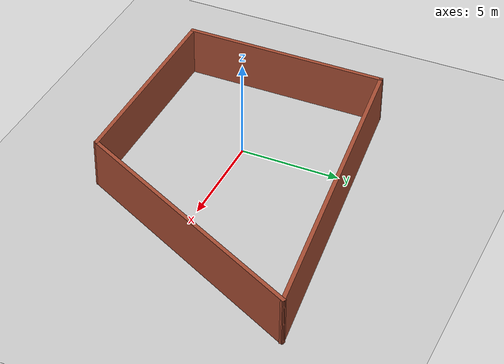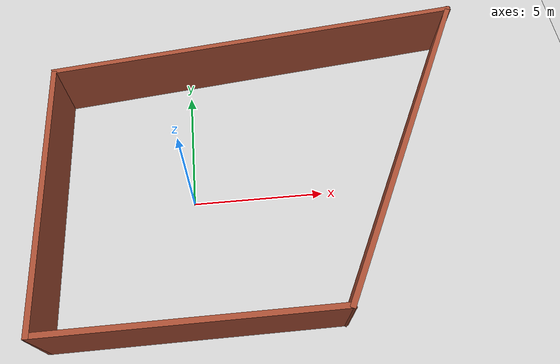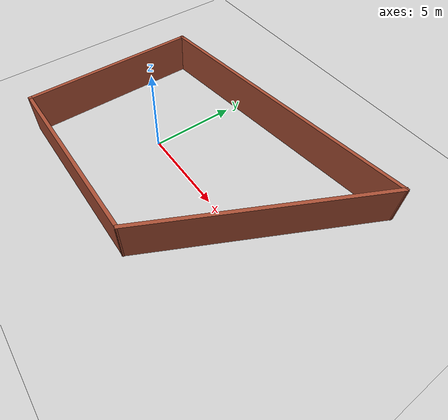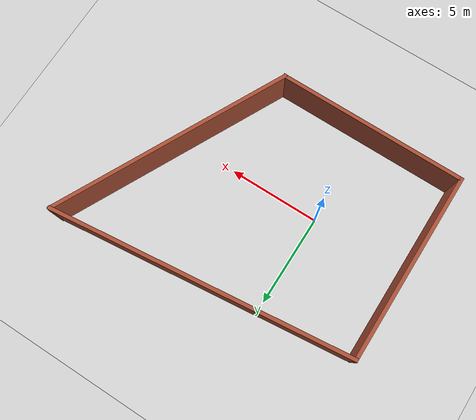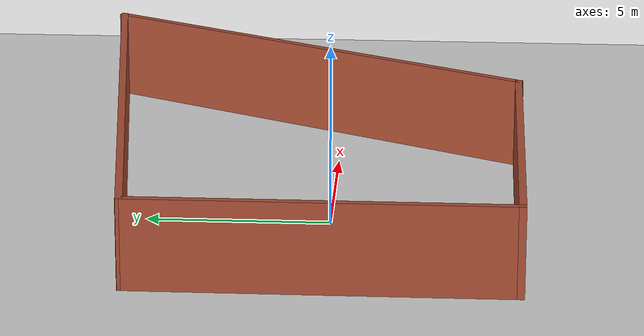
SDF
<?xml version="1.0" ?>
<!-- Reference from https://classic.gazebosim.org/tutorials?tut=guided_i1&cat= -->
<sdf version="1.5">
  <world name="default">

    <!-- A global light source -->
    <include>
      <uri>model://sun</uri>
    </include>

    <!-- A ground plane -->
    <include>
      <uri>model://ground_plane</uri>
    </include>
    <model name="cylinderRobot">
      <!-- Give the base link a unique name -->
      <link name="base">
        <!-- Offset the base by half the lenght of the cylinder -->
        <pose>0 0 0.029335 0 0 0</pose>
        <collision name="base_collision">
          <geometry>
            <cylinder>
              <!-- Radius and length provided by Velodyne -->
              <radius>.04267</radius>
              <length>.05867</length>
            </cylinder>
          </geometry>
        </collision>
        <inertial>
          <mass>1.2</mass>
          <inertia>
            <ixx>0.001087473</ixx>
            <iyy>0.001087473</iyy>
            <izz>0.001092437</izz>
            <ixy>0</ixy>
            <ixz>0</ixz>
            <iyz>0</iyz>
          </inertia>
        </inertial>
        <!-- The visual is mostly a copy of the collision -->
        <visual name="base_visual">
          <geometry>
            <cylinder>
              <radius>.04267</radius>
              <length>.05867</length>
            </cylinder>
          </geometry>
        </visual>
      </link>

      <!-- Give the base link a unique name -->
      <link name="top">

        <!-- Vertically offset the top cylinder by the length of the bottom
            cylinder and half the length of this cylinder. -->
        <pose>0 0 0.095455 0 0 0</pose>
        <collision name="top_collision">
          <geometry>
            <cylinder>
              <!-- Radius and length provided by Velodyne -->
              <radius>0.04267</radius>
              <length>0.07357</length>
            </cylinder>
          </geometry>
        </collision>
        <inertial>
          <mass>0.1</mass>
          <inertia>
            <ixx>0.000090623</ixx>
            <iyy>0.000090623</iyy>
            <izz>0.000091036</izz>
            <ixy>0</ixy>
            <ixz>0</ixz>
            <iyz>0</iyz>
          </inertia>
        </inertial>
        <!-- The visual is mostly a copy of the collision -->
        <visual name="top_visual">
          <geometry>
            <cylinder>
              <radius>0.04267</radius>
              <length>0.07357</length>
            </cylinder>
          </geometry>
        </visual>
        <!-- Add a ray sensor, and give it a name -->
        <sensor type="ray" name="sensor">

          <pose>0 0 0.03779 0 0 0</pose>

          <!-- Enable visualization to see the rays in the GUI -->
          <visualize>true</visualize>

          <!-- Set the update rate of the sensor -->
          <update_rate>10</update_rate>
          <always_on>true</always_on>
          <ray>
	          <noise>
              <type>gaussian</type>
              <mean>0</mean>
              <stddev>0.02</stddev>
            </noise>
            <!-- The scan element contains the horizontal and vertical beams.
                We are leaving out the vertical beams for this tutorial. -->
            <scan>

              <!-- The horizontal beams -->
              <horizontal>
                <!-- The velodyne has 32 beams(samples) -->
                <samples>2</samples>

                <resolution>1</resolution>

                <!-- Minimum angle in radians -->
                <min_angle>0</min_angle>

                <!-- Maximum angle in radians -->
                <max_angle>1.570796</max_angle>
              </horizontal>
            </scan>

            <!-- Range defines characteristics of an individual beam -->
            <range>

              <!-- Minimum distance of the beam -->
              <min>0.00</min>

              <!-- Maximum distance of the beam -->
              <max>70</max>

              <!-- Linear resolution of the beam -->
              <resolution>0.001</resolution>
            </range>
          </ray>
          <plugin name="gazebo_ros_ray_controller" filename="libgazebo_ros_laser.so">
            <topicName>/robot/observe</topicName>
            <frameName>ray_sensor</frameName>
          </plugin>
        </sensor>
      </link>
      <!-- Each joint must have a unique name -->
      <joint type="revolute" name="joint">

        <!-- Position the joint at the bottom of the top link -->
        <pose>0 0 -0.036785 0 0 0</pose>

        <!-- Use the base link as the parent of the joint -->
        <parent>base</parent>

        <!-- Use the top link as the child of the joint -->
        <child>top</child>

        <!-- The axis defines the joint's degree of freedom -->
        <axis>

          <!-- Revolve around the z-axis -->
          <xyz>0 0 1</xyz>

          <!-- Limit refers to the range of motion of the joint -->
          <limit>

            <!-- Use a very large number to indicate a continuous revolution -->
            <lower>-10000000000000000</lower>
            <upper>10000000000000000</upper>
          </limit>
        </axis>
      </joint>
    </model>
    <model name='myroom10'>
      <pose frame=''>3.01187 0.9 0 0 -0 0</pose>
      <link name='Wall_10'>
        <collision name='Wall_10_Collision'>
          <geometry>
            <box>
              <size>10.4 0.2 2.5</size>
            </box>
          </geometry>
          <pose frame=''>0 0 1.25 0 -0 0</pose>
          <max_contacts>10</max_contacts>
          <surface>
            <contact>
              <ode/>
            </contact>
            <bounce/>
            <friction>
              <torsional>
                <ode/>
              </torsional>
              <ode/>
            </friction>
          </surface>
        </collision>
        <visual name='Wall_10_Visual'>
          <pose frame=''>0 0 1.25 0 -0 0</pose>
          <geometry>
            <box>
              <size>10.4 0.2 2.5</size>
            </box>
          </geometry>
          <material>
            <script>
              <uri>file://media/materials/scripts/gazebo.material</uri>
              <name>Gazebo/Bricks</name>
            </script>
            <ambient>1 1 1 1</ambient>
          </material>
          <meta>
            <layer>0</layer>
          </meta>
        </visual>
        <pose frame=''>-8.11187 -0.9 0 0 -0 1.5708</pose>
        <self_collide>0</self_collide>
        <enable_wind>0</enable_wind>
        <kinematic>0</kinematic>
      </link>
      <link name='Wall_12'>
        <collision name='Wall_12_Collision'>
          <geometry>
            <box>
              <size>10.4 0.2 2.5</size>
            </box>
          </geometry>
          <pose frame=''>0 0 1.25 0 -0 0</pose>
          <max_contacts>10</max_contacts>
          <surface>
            <contact>
              <ode/>
            </contact>
            <bounce/>
            <friction>
              <torsional>
                <ode/>
              </torsional>
              <ode/>
            </friction>
          </surface>
        </collision>
        <visual name='Wall_12_Visual'>
          <pose frame=''>0 0 1.25 0 -0 0</pose>
          <geometry>
            <box>
              <size>10.4 0.2 2.5</size>
            </box>
          </geometry>
          <material>
            <script>
              <uri>file://media/materials/scripts/gazebo.material</uri>
              <name>Gazebo/Bricks</name>
            </script>
            <ambient>1 1 1 1</ambient>
          </material>
          <meta>
            <layer>0</layer>
          </meta>
        </visual>
        <pose frame=''>-3.01187 -6 0 0 -0 0</pose>
        <self_collide>0</self_collide>
        <enable_wind>0</enable_wind>
        <kinematic>0</kinematic>
      </link>
      <link name='Wall_15'>
        <collision name='Wall_15_Collision'>
          <geometry>
            <box>
              <size>13.6164 0.2 2.5</size>
            </box>
          </geometry>
          <pose frame=''>0 0 1.25 0 -0 0</pose>
          <max_contacts>10</max_contacts>
          <surface>
            <contact>
              <ode/>
            </contact>
            <bounce/>
            <friction>
              <torsional>
                <ode/>
              </torsional>
              <ode/>
            </friction>
          </surface>
        </collision>
        <visual name='Wall_15_Visual'>
          <pose frame=''>0 0 1.25 0 -0 0</pose>
          <geometry>
            <box>
              <size>13.6164 0.2 2.5</size>
            </box>
          </geometry>
          <material>
            <script>
              <uri>file://media/materials/scripts/gazebo.material</uri>
              <name>Gazebo/Bricks</name>
            </script>
            <ambient>1 1 1 1</ambient>
          </material>
          <meta>
            <layer>0</layer>
          </meta>
        </visual>
        <pose frame=''>5.08813 -0 0 0 -0 1.10715</pose>
        <self_collide>0</self_collide>
        <enable_wind>0</enable_wind>
        <kinematic>0</kinematic>
      </link>
      <link name='Wall_19'>
        <collision name='Wall_19_Collision'>
          <geometry>
            <box>
              <size>16.4997 0.2 2.5</size>
            </box>
          </geometry>
          <pose frame=''>0 0 1.25 0 -0 0</pose>
          <max_contacts>10</max_contacts>
          <surface>
            <contact>
              <ode/>
            </contact>
            <bounce/>
            <friction>
              <torsional>
                <ode/>
              </torsional>
              <ode/>
            </friction>
          </surface>
        </collision>
        <visual name='Wall_19_Visual'>
          <pose frame=''>0 0 1.25 0 -0 0</pose>
          <geometry>
            <box>
              <size>16.4997 0.2 2.5</size>
            </box>
          </geometry>
          <material>
            <script>
              <uri>file://media/materials/scripts/gazebo.material</uri>
              <name>Gazebo/Bricks</name>
            </script>
            <ambient>1 1 1 1</ambient>
          </material>
          <meta>
            <layer>0</layer>
          </meta>
        </visual>
        <pose frame=''>-0.011866 5.1 0 0 -0 0.110657</pose>
        <self_collide>0</self_collide>
        <enable_wind>0</enable_wind>
        <kinematic>0</kinematic>
      </link>
      <static>1</static>
    </model>

  </world>
</sdf>
